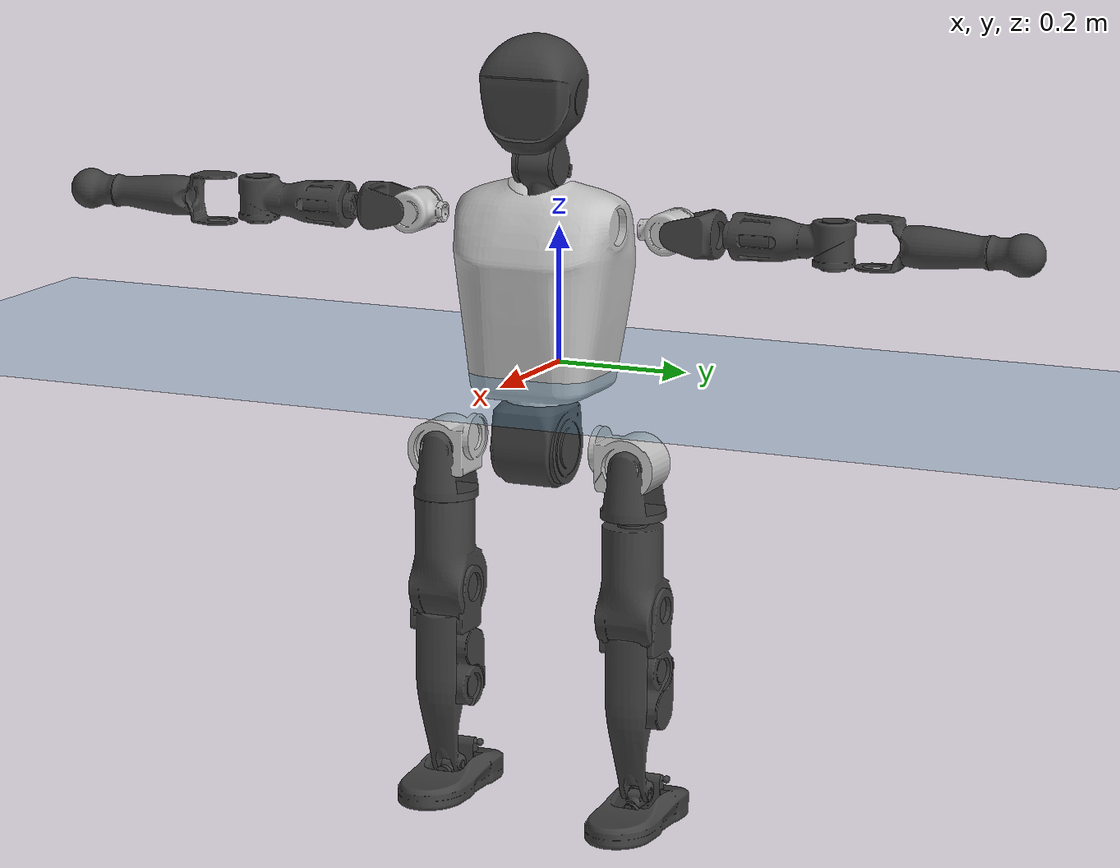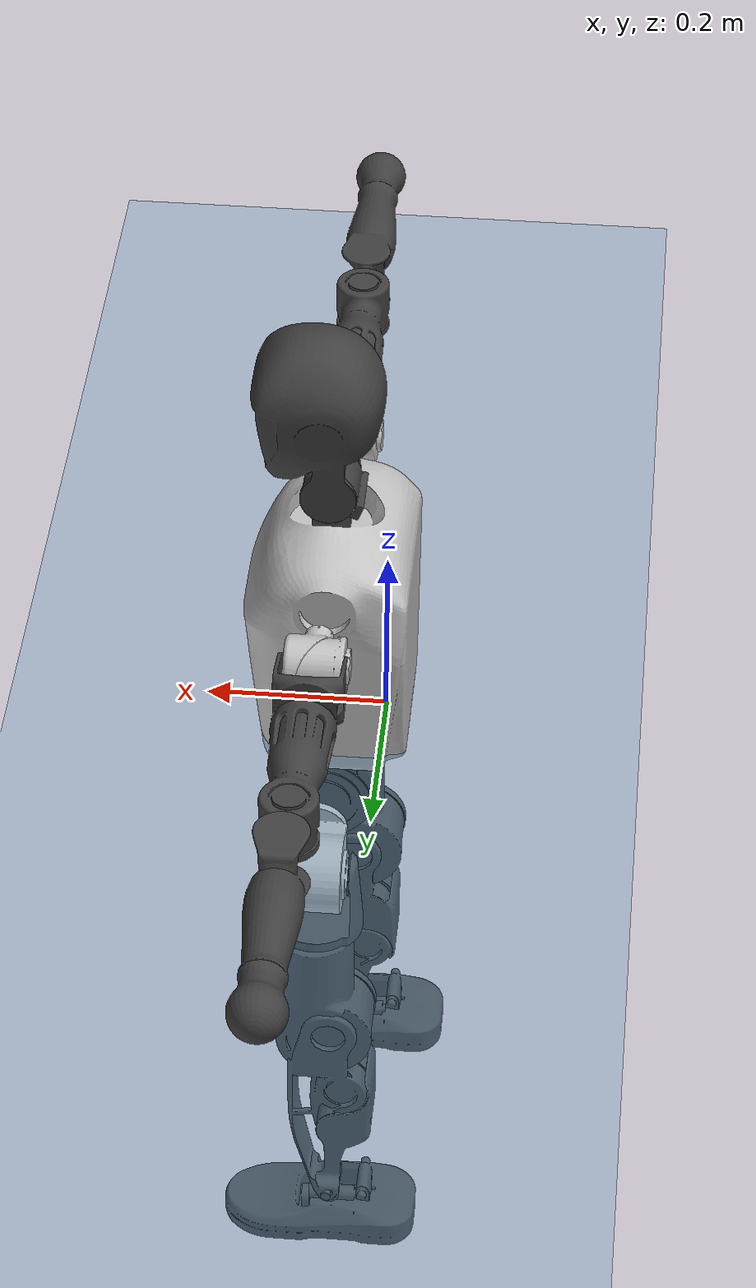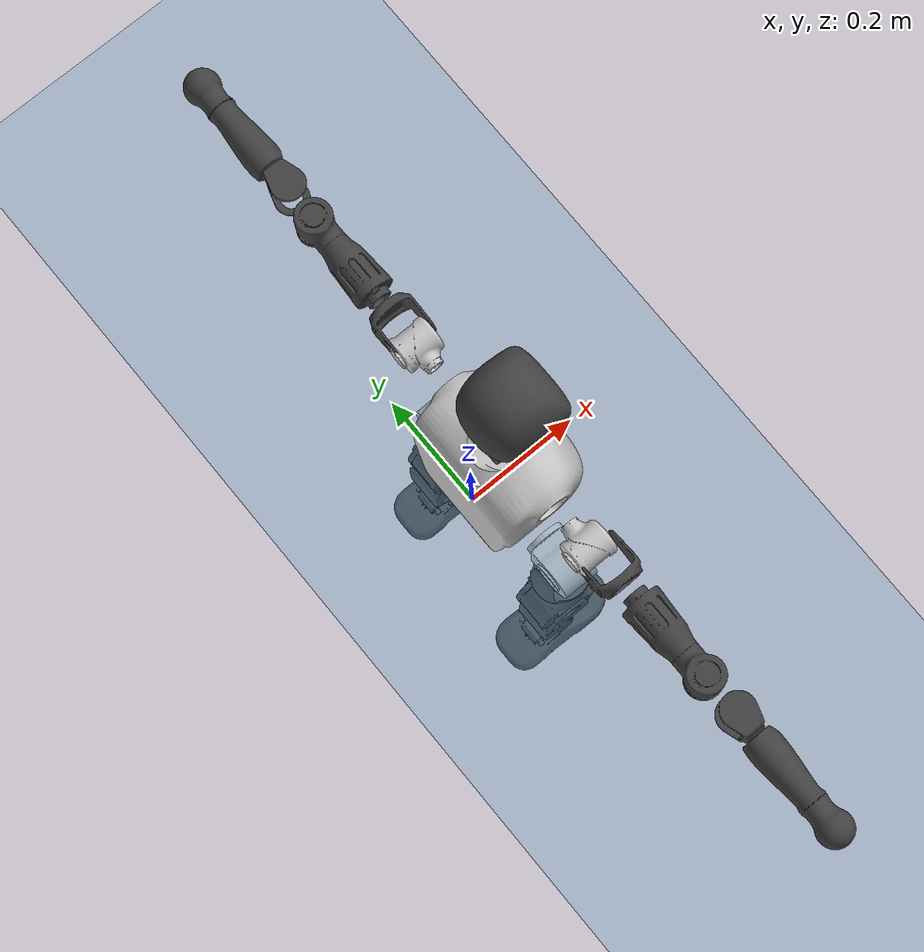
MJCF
<mujoco model="T1">
  <compiler angle="radian" assetdir="assets" balanceinertia="true" inertiafromgeom="false"/>

  <option timestep="0.005" density="1.2" viscosity="2e-05"/>

  <size nkey="1"/>

  <visual>
    <quality shadowsize="8192"/>
    <map shadowclip="0.5"/>
  </visual>

  <default>
    <default class="/">
      <joint armature="0.01" damping="0.01" frictionloss="0.1"/>
      <geom contype="0" conaffinity="0" group="1" solref="-1000 -80"/>
      <site size="0.01 0.005 0.005" group="5"/>
      <general forcelimited="true" biastype="affine" gainprm="25" biasprm="0 -25 -0.6"/>
      <default class="t1">
        <geom rgba="0.25 0.25 0.25 1"/>
        <default class="visual">
          <geom type="mesh" group="2"/>
        </default>
        <default class="collision">
          <geom group="3"/>
        </default>
        <default class="foot">
          <geom size="0.1115 0.05 0.015" type="box" condim="6" group="4" priority="1" solimp="0.015 1 0.015"/>
        </default>
        <default class="reward_collision_sphere">
          <geom group="5" rgba="1 0 0 1"/>
        </default>
      </default>
    </default>
  </default>

  <asset>
    <texture type="skybox" colorspace="auto" name="//unnamed_texture_0" builtin="gradient" rgb1="0.95 0.95 0.95" rgb2="0.95 0.95 0.95" width="100" height="600"/>
    <texture type="2d" colorspace="auto" name="texplane" builtin="checker" rgb1="0.345 0.575 0.748" rgb2="0.345 0.575 0.748" markrgb="1 1 1" width="512" height="512"/>
    <material name="MatPlane" class="/" texture="texplane" texuniform="true" texrepeat="2 2" specular="0.9"/>
    <mesh name="Trunk" class="/" file="Trunk.stl"/>
    <mesh name="H1" class="/" file="H1.stl"/>
    <mesh name="H2" class="/" file="H2.stl"/>
    <mesh name="AL1" class="/" file="AL1.stl"/>
    <mesh name="AL2" class="/" file="AL2.stl"/>
    <mesh name="AL3" class="/" file="AL3.stl"/>
    <mesh name="left_hand_link" class="/" file="left_hand_link.stl"/>
    <mesh name="AR1" class="/" file="AR1.stl"/>
    <mesh name="AR2" class="/" file="AR2.stl"/>
    <mesh name="AR3" class="/" file="AR3.stl"/>
    <mesh name="right_hand_link" class="/" file="right_hand_link.stl"/>
    <mesh name="Waist" class="/" file="Waist.stl"/>
    <mesh name="Hip_Pitch_Left" class="/" file="Hip_Pitch_Left.stl"/>
    <mesh name="Hip_Roll_Left" class="/" file="Hip_Roll_Left.stl"/>
    <mesh name="Hip_Yaw_Left" class="/" file="Hip_Yaw_Left.stl"/>
    <mesh name="Shank_Left" class="/" file="Shank_Left.stl"/>
    <mesh name="Ankle_Cross_Left" class="/" file="Ankle_Cross_Left.stl"/>
    <mesh name="left_foot_link" class="/" file="left_foot_link.stl"/>
    <mesh name="Hip_Pitch_Right" class="/" file="Hip_Pitch_Right.stl"/>
    <mesh name="Hip_Roll_Right" class="/" file="Hip_Roll_Right.stl"/>
    <mesh name="Hip_Yaw_Right" class="/" file="Hip_Yaw_Right.stl"/>
    <mesh name="Shank_Right" class="/" file="Shank_Right.stl"/>
    <mesh name="Ankle_Cross_Right" class="/" file="Ankle_Cross_Right.stl"/>
    <mesh name="right_foot_link" class="/" file="right_foot_link.stl"/>
  </asset>

  <worldbody>
    <geom name="floor" class="/" size="100 100 0.125" type="plane" group="0" material="MatPlane"/>
    <light name="toplight_shadow" class="/" pos="0 0 5" dir="0.0990148 0.0990148 -0.990148" type="directional" ambient="0.04 0.04 0.04" diffuse="0.55 0.55 0.55" specular="0.12 0.12 0.12"/>
    <light name="toplight_fill" class="/" pos="0 0 5" dir="0.0990148 0.0990148 -0.990148" type="directional" castshadow="false" ambient="0.04 0.04 0.04" diffuse="0.3 0.3 0.3" specular="0.08 0.08 0.08"/>
    <body name="trunk" childclass="t1" pos="0.000220785 -0.00168007 -0.00192239" quat="1 -9.66776e-05 8.16394e-05 5.87761e-05">
      <inertial pos="0.0550702 -0.00586486 0.1008" quat="0.99994 0.00421459 -0.0101488 -1.4425e-05" mass="17.7973" diaginertia="0.0981422 0.486168 0.0523295"/>
      <joint name="//unnamed_joint_0" type="free" armature="0" damping="0" frictionloss="0"/>
      <geom name="//unnamed_geom_1" class="visual" rgba="0.76 0.76 0.76 1" mesh="Trunk"/>
      <geom name="//unnamed_geom_2" class="collision" size="0.0864339 0.115245 0.172868" pos="0.0609263 0 0.119488" type="box"/>
      <geom name="//unnamed_geom_3" class="reward_collision_sphere" size="0.132532" pos="0.0609263 0 0.0995736"/>
      <geom name="//unnamed_geom_4" class="reward_collision_sphere" size="0.0172868" pos="0.0609263 0.122925 0"/>
      <geom name="//unnamed_geom_5" class="reward_collision_sphere" size="0.0172868" pos="0.0609263 -0.122925 0"/>
      <geom name="//unnamed_geom_6" class="reward_collision_sphere" size="0.0172868" pos="0.0609263 0.154741 0.179232"/>
      <geom name="//unnamed_geom_7" class="reward_collision_sphere" size="0.0172868" pos="0.0609263 -0.154741 0.179232"/>
      <site name="imu" pos="-4.07256e-05 -0.00405658 0.0115663" size="0.0115245"/>
      <camera name="track" pos="0 -2.89236 0" quat="0.707107 0.707107 0 0" mode="trackcom"/>
      <camera name="ego_camera" pos="0.123884 0 0.418209" quat="-0.5 -0.5 0.5 0.5"/>
      <body name="H1" pos="0.0611676 0.00310844 0.238154" quat="1 4.57624e-06 -7.47573e-06 -4.6493e-07">
        <inertial pos="-0.00135939 -0.00800211 0.0547738" quat="0.764893 -0.00411317 0.0167569 0.643926" mass="0.685819" diaginertia="0.000271973 0.00141865 0.000144026"/>
        <joint name="AAHead_yaw" pos="0 0 0" axis="-0.00594371 0.00304128 0.999978" range="-1.56285 1.65268" armature="0.0106237" damping="0.00192185" frictionloss="0.152091"/>
        <geom name="//unnamed_geom_8" class="visual" mesh="H1"/>
        <body name="H2" pos="0.00164989 -0.0018752 0.0643202" quat="1 0.000313805 -7.84631e-05 0.000474384">
          <inertial pos="0.00526487 0.00609496 0.0963805" quat="0.98819 0.0967517 -0.0679252 -0.0975022" mass="0.969794" diaginertia="0.00219554 0.0122775 0.00166782"/>
          <joint name="Head_pitch" pos="0 0 0" axis="-0.00541702 -0.999938 0.0097508" range="-1.24302 0.36512" armature="0.0120704" damping="0.00427575" frictionloss="0.119711"/>
          <geom name="//unnamed_geom_9" class="visual" mesh="H2"/>
          <geom name="//unnamed_geom_10" class="collision" size="0.0921961" pos="0.0101544 0 0.109531"/>
          <geom name="//unnamed_geom_11" class="reward_collision_sphere" size="0.103721" pos="0.0203088 0 0.0995736"/>
        </body>
      </body>
      <body name="AL1" pos="0.0597512 0.156124 0.217855" quat="0.999999 0.000147477 -0.00115491 -0.00116272">
        <inertial pos="-0.00135195 0.064012 -0.0014824" quat="0.493398 0.513275 -0.494766 0.498312" mass="0.795388" diaginertia="0.00149364 0.00766592 0.000289201"/>
        <joint name="Left_Shoulder_Pitch" pos="0 0 0" axis="0.00128604 0.999999 -0.000487115" range="-3.25358 1.15987" armature="0.0112881" damping="0" frictionloss="0.114689"/>
        <geom name="//unnamed_geom_12" class="visual" rgba="0.76 0.76 0.76 1" mesh="AL1"/>
        <body name="AL2" pos="0.00117294 0.0651565 0.00100428" quat="1 0.000253832 0.000514629 5.49389e-05">
          <inertial pos="-0.00034767 0.0492418 0.000100507" quat="0.478046 0.492409 -0.497432 0.530629" mass="0.252673" diaginertia="0.000443028 0.00222106 0.000167188"/>
          <joint name="Left_Shoulder_Roll" pos="0 0 0" axis="-0.999968 -0.000667942 -0.00802598" stiffness="0.00127081" range="-1.56635 1.74943" armature="0.0131964" damping="0.0106352" frictionloss="0.101257"/>
          <geom name="//unnamed_geom_13" class="visual" mesh="AL2"/>
          <body name="AL3" pos="0.000296543 0.0813865 0.000569346" quat="1 -0.000186373 0.000357849 2.45207e-05">
            <inertial pos="0.00472811 0.124723 0.000127509" quat="0.706964 0.707236 -0.00406982 -0.00160989" mass="1.47303" diaginertia="0.0130381 0.0805327 0.000602994"/>
            <joint name="Left_Elbow_Pitch" pos="0 0 0" axis="0.00198529 -0.999993 0.00313269" range="-2.22827 2.17977" armature="0.00989356" damping="0.00527425" frictionloss="0.114251"/>
            <geom name="//unnamed_geom_14" class="visual" mesh="AL3"/>
            <geom name="//unnamed_geom_15" class="collision" size="0.0345735 0.0864339" pos="0 0.072309 0" quat="0.707105 0.707108 0 0" type="cylinder"/>
            <geom name="//unnamed_geom_16" class="reward_collision_sphere" size="0.0414882"/>
            <body name="left_hand_link" pos="0.0010105 0.208417 0.00526802" quat="0.999999 -0.000883622 -0.000774858 -0.000321932">
              <inertial pos="0.000991245 0.156193 0.00221428" quat="0.707107 0.707024 -0.00866458 0.00644482" mass="0.516961" diaginertia="0.00912564 0.0512078 0.000204879"/>
              <joint name="Left_Elbow_Yaw" pos="0 0 0" axis="-0.006272 0.00433404 0.999971" range="-2.35402 -0.0188433" armature="0.0117412" damping="0.0379095" frictionloss="0.101796"/>
              <geom name="//unnamed_geom_17" class="visual" mesh="left_hand_link"/>
              <geom name="//unnamed_geom_18" class="collision" size="0.0345735 0.100839" pos="0 0.188003 0" quat="0.707105 0.707108 0 0" type="cylinder"/>
              <geom name="//unnamed_geom_19" class="reward_collision_sphere" size="0.0576226"/>
              <geom name="//unnamed_geom_20" class="reward_collision_sphere" size="0.0403358" pos="0 0.15908 0"/>
              <geom name="//unnamed_geom_21" class="reward_collision_sphere" size="0.0403358" pos="0 0.310929 0"/>
            </body>
          </body>
        </body>
      </body>
      <body name="AR1" pos="0.0599758 -0.152669 0.220702" quat="1 0.00015982 0.000378548 0.000326577">
        <inertial pos="-0.0004521 -0.0653527 0.00457612" quat="0.506082 0.513164 -0.496015 0.484266" mass="0.793203" diaginertia="0.00149641 0.00840931 0.000287117"/>
        <joint name="Right_Shoulder_Pitch" pos="0 0 0" axis="0.000334208 -1 -1.09646e-05" range="-1.21435 3.31389" armature="0.0125536" damping="0.0279239" frictionloss="0.144647"/>
        <geom name="//unnamed_geom_22" class="visual" rgba="0.76 0.76 0.76 1" mesh="AR1"/>
        <body name="AR2" pos="0.00491429 -0.0679474 0.00229049" quat="1 0.000356792 0.000271734 0.000254693">
          <inertial pos="0.00387417 -0.0489404 0.0029033" quat="0.494089 0.500756 -0.510764 0.494206" mass="0.255857" diaginertia="0.000441672 0.00229711 0.00017539"/>
          <joint name="Right_Shoulder_Roll" pos="0 0 0" axis="-0.999947 -0.00507445 0.00896075" range="-1.73708 1.57148" armature="0.0114187" damping="0.0364325" frictionloss="0.128508"/>
          <geom name="//unnamed_geom_23" class="visual" mesh="AR2"/>
          <body name="AR3" pos="0.00173073 -0.0859808 -0.001477" quat="1 -0.000117345 0.000113019 5.76513e-05">
            <inertial pos="0.00202801 -0.125167 -0.00225466" quat="0.707155 0.70705 0.00181355 0.00299853" mass="1.55572" diaginertia="0.0139141 0.0863488 0.000592711"/>
            <joint name="Right_Elbow_Pitch" pos="0 0 0" axis="0.00760035 0.999961 0.00444107" range="-2.3165 2.30764" armature="0.0119147" damping="0.00780192" frictionloss="0.129312"/>
            <geom name="//unnamed_geom_24" class="visual" mesh="AR3"/>
            <geom name="//unnamed_geom_25" class="collision" size="0.0345735 0.0864339" pos="0 -0.072309 0" quat="0.707105 0.707108 0 0" type="cylinder"/>
            <geom name="//unnamed_geom_26" class="reward_collision_sphere" size="0.0414882"/>
            <body name="right_hand_link" pos="0.00237698 -0.214485 -0.00564161" quat="1 -0.000117934 0.00038801 -0.000110058">
              <inertial pos="0.000726204 -0.159683 0.00212355" quat="0.69974 0.714357 -0.0076414 -0.000255448" mass="0.487966" diaginertia="0.00909302 0.0530877 0.000208593"/>
              <joint name="Right_Elbow_Yaw" pos="0 0 0" axis="-8.7029e-05 0.000274422 1" range="-0.0179501 2.43909" armature="0.0105695" damping="0.0223949" frictionloss="0.0880945"/>
              <geom name="//unnamed_geom_27" class="visual" mesh="right_hand_link"/>
              <geom name="//unnamed_geom_28" class="collision" size="0.0345735 0.100839" pos="0 -0.188003 0" quat="0.707105 0.707108 0 0" type="cylinder"/>
              <geom name="//unnamed_geom_29" class="reward_collision_sphere" size="0.0576226"/>
              <geom name="//unnamed_geom_30" class="reward_collision_sphere" size="0.0403358" pos="0 -0.15908 0"/>
              <geom name="//unnamed_geom_31" class="reward_collision_sphere" size="0.0403358" pos="0 -0.310929 0"/>
            </body>
          </body>
        </body>
      </body>
      <body name="Waist" pos="0.0650662 -0.00382496 -0.10949" quat="1 0.000388358 -0.000776529 0.000142081">
        <inertial pos="0.0089844 0.00223726 0.0100251" quat="0.983459 -0.0061349 -0.180949 -0.00532055" mass="4.0478" diaginertia="0.00621956 0.0331145 0.00475165"/>
        <joint name="Waist" pos="0 0 0" axis="0.000150812 0.0100365 0.99995" range="-1.57205 1.55804" armature="0.0108455" damping="0.0128308" frictionloss="0.114279"/>
        <geom name="//unnamed_geom_32" class="visual" mesh="Waist"/>
        <body name="Hip_Pitch_Left" pos="0.00319519 0.153122 0.00386111" quat="0.999999 0.000704203 -0.000655645 -0.0011468">
          <inertial pos="-0.000334045 -0.0130208 -0.019311" quat="0.975138 0.221111 0.0145781 0.0017155" mass="1.46076" diaginertia="0.00192181 0.00905859 0.00120767"/>
          <joint name="Left_Hip_Pitch" pos="0 0 0" axis="0.000399386 0.999993 -0.00381935" range="-1.8007 1.48057" armature="0.00859489" damping="0.0131892" frictionloss="0.125383"/>
          <geom name="//unnamed_geom_33" class="visual" rgba="0.76 0.76 0.76 1" mesh="Hip_Pitch_Left"/>
          <body name="Hip_Roll_Left" pos="-0.00439403 -0.000821569 -0.0194862" quat="0.999999 0.00073575 -0.000620137 0.00029277">
            <inertial pos="0.000589974 0.00064285 -0.0526194" quat="0.701905 0.0117245 -0.0240146 0.711769" mass="0.640344" diaginertia="0.00198734 0.00985757 0.000509762"/>
            <joint name="Left_Hip_Roll" pos="0 0 0" axis="-0.999871 -0.0156334 0.00379166" range="-1.56678 0.247457" armature="0.0091189" damping="0" frictionloss="0.115048"/>
            <geom name="//unnamed_geom_34" class="visual" mesh="Hip_Roll_Left"/>
            <geom name="//unnamed_geom_35" class="reward_collision_sphere" size="0.0633848"/>
            <body name="Hip_Yaw_Left" pos="0.00124053 -0.000474592 -0.0885479" quat="0.999999 -0.00123312 -0.000340703 -0.000223878">
              <inertial pos="-0.00403319 0.00206462 -0.0913132" quat="0.694533 -0.0442966 -0.0299414 0.717472" mass="3.21602" diaginertia="0.027114 0.16911 0.00247902"/>
              <joint name="Left_Hip_Yaw" pos="0 0 0" axis="-0.0093058 0.00251334 -0.999954" range="-1.0056 0.927993" armature="0.0114339" damping="0" frictionloss="0.119705"/>
              <geom name="//unnamed_geom_36" class="visual" mesh="Hip_Yaw_Left"/>
              <geom name="//unnamed_geom_37" class="collision" size="0.0576226 0.0921961" type="cylinder"/>
              <body name="Shank_Left" pos="-0.0197348 0.000720445 -0.126067" quat="1 -0.000176547 0.000588664 0.00032128">
                <inertial pos="-0.00835 -0.00279408 -0.127631" quat="0.997531 -0.000426959 -0.024389 0.0658517" mass="2.82824" diaginertia="0.0367293 0.210308 0.00185436"/>
                <joint name="Left_Knee_Pitch" pos="0 0 0" axis="0.0179714 0.99981 0.00752926" range="0.012025 2.31917" armature="0.0119539" damping="0.00417275" frictionloss="0.101411"/>
                <geom name="//unnamed_geom_38" class="visual" mesh="Shank_Left"/>
                <geom name="//unnamed_geom_39" class="collision" size="0.0576226 0.0864339" pos="0 0 -0.119488" type="cylinder"/>
                <geom name="//unnamed_geom_40" class="reward_collision_sphere" size="0.0749093"/>
                <body name="Ankle_Cross_Left" pos="0.00341511 0.00112203 -0.283291" quat="0.999999 0.000719593 0.000803065 -0.000540378">
                  <inertial pos="-0.0047138 -0.00170198 -0.00776752" quat="0.445191 0.543659 0.557329 0.442293" mass="0.105659" diaginertia="2.93394e-05 0.000159493 1.08458e-05"/>
                  <joint name="Left_Ankle_Pitch" pos="0 0 0" axis="0.000347764 1 0.000107266" stiffness="0.00528155" range="-0.959544 0.395033" armature="0.0112904" damping="0" frictionloss="0.127262"/>
                  <geom name="//unnamed_geom_41" class="visual" mesh="Ankle_Cross_Left"/>
                  <body name="left_foot_link" pos="-0.00188454 0.00121611 -0.0173587" quat="1 -1.61157e-05 -0.00022373 0.000288889">
                    <inertial pos="0.00176759 0.000611639 -0.00627174" quat="0.00992128 0.619948 0.00298855 0.784574" mass="1.11346" diaginertia="0.00318843 0.0157226 0.002059"/>
                    <joint name="Left_Ankle_Roll" pos="0 0 0" axis="-0.999913 0.0127581 -0.00341845" range="-0.41541 0.442285" armature="0.0111884" damping="0" frictionloss="0.117443"/>
                    <geom name="//unnamed_geom_42" class="visual" mesh="left_foot_link"/>
                    <geom name="left_foot" class="foot" size="0.121934 0.0441642 0.0186653" pos="0.0101544 0 -0.014936"/>
                    <geom name="//unnamed_geom_44" class="reward_collision_sphere" size="0.0599275" pos="0.0101544 0 -0.014936"/>
                    <geom name="//unnamed_geom_45" class="reward_collision_sphere" size="0.0345735" pos="0.0964667 -0.0332621 -0.014936"/>
                    <geom name="//unnamed_geom_46" class="reward_collision_sphere" size="0.0345735" pos="-0.0710807 -0.0332621 -0.014936"/>
                    <site name="left_foot" class="foot" pos="0.0101544 0 -0.014936" size="0.0115245"/>
                  </body>
                </body>
              </body>
            </body>
          </body>
        </body>
        <body name="Hip_Pitch_Right" pos="-0.00269693 -0.15108 0.0020526" quat="0.999998 0.00112575 0.00162434 -0.000579049">
          <inertial pos="0.00303902 0.00886231 -0.0214459" quat="0.973042 -0.229169 0.0239342 -0.00990758" mass="1.54452" diaginertia="0.00192356 0.00885079 0.00129856"/>
          <joint name="Right_Hip_Pitch" pos="0 0 0" axis="-0.00067384 -0.999939 0.0109858" stiffness="0.0071391" range="-1.57508 1.91255" armature="0.0121622" damping="0.00831875" frictionloss="0.110703"/>
          <geom name="//unnamed_geom_47" class="visual" rgba="0.76 0.76 0.76 1" mesh="Hip_Pitch_Right"/>
          <body name="Hip_Roll_Right" pos="-0.00508311 0.000591898 -0.0165638" quat="1 -0.000182605 -1.02967e-05 0.000172562">
            <inertial pos="0.000261547 0.00179178 -0.054151" quat="0.715639 -0.0144811 0.0156118 0.698146" mass="0.588223" diaginertia="0.00187455 0.00938403 0.000518924"/>
            <joint name="Right_Hip_Roll" pos="0 0 0" axis="-0.999941 -0.00333823 0.0103298" range="-0.323774 1.51581" armature="0.0111905" damping="0.00318324" frictionloss="0.117279"/>
            <geom name="//unnamed_geom_48" class="visual" mesh="Hip_Roll_Right"/>
            <geom name="//unnamed_geom_49" class="reward_collision_sphere" size="0.0633848"/>
            <body name="Hip_Yaw_Right" pos="-0.000531771 -0.00224865 -0.0787739" quat="0.999999 -0.000129298 0.000693468 -0.000951049">
              <inertial pos="-0.00765993 -0.000354856 -0.0842203" quat="0.70844 -0.0312823 -0.0297013 0.704451" mass="3.51829" diaginertia="0.0289659 0.164403 0.00261856"/>
              <joint name="Right_Hip_Yaw" pos="0 0 0" axis="-0.0252504 -0.0203979 -0.999473" range="-0.964829 1.04407" armature="0.00955012" damping="0.0369719" frictionloss="0.116182"/>
              <geom name="//unnamed_geom_50" class="visual" mesh="Hip_Yaw_Right"/>
              <geom name="//unnamed_geom_51" class="collision" size="0.0576226 0.0921961" type="cylinder"/>
              <body name="Shank_Right" pos="-0.0125287 -0.0018283 -0.136488" quat="1 4.76401e-05 1.65864e-05 8.61798e-07">
                <inertial pos="-0.00538734 -0.00166222 -0.119831" quat="0.99906 -0.00939506 -0.0276743 -0.0320108" mass="2.51202" diaginertia="0.034098 0.204162 0.00175781"/>
                <joint name="Right_Knee_Pitch" pos="0 0 0" axis="0.00955054 -0.999922 0.00805289" range="-2.42734 0.0242582" armature="0.00855618" damping="0.00730212" frictionloss="0.116031"/>
                <geom name="//unnamed_geom_52" class="visual" mesh="Shank_Right"/>
                <geom name="//unnamed_geom_53" class="collision" size="0.0576226 0.0864339" pos="0 0 -0.119488" type="cylinder"/>
                <geom name="//unnamed_geom_54" class="reward_collision_sphere" size="0.0749093"/>
                <body name="Ankle_Cross_Right" pos="0.000201206 0.00201396 -0.275598" quat="1 0.000211637 5.345e-06 3.87471e-06">
                  <inertial pos="-0.00347182 0.0007729 -0.00802408" quat="0.441745 0.55001 0.55732 0.437887" mass="0.114349" diaginertia="3.0274e-05 0.000156871 1.13044e-05"/>
                  <joint name="Right_Ankle_Pitch" pos="0 0 0" axis="-0.00156851 -0.999999 0.00057601" stiffness="0.0172699" range="-0.284751 0.939745" armature="0.0117025" damping="0.018378" frictionloss="0.101212"/>
                  <geom name="//unnamed_geom_55" class="visual" mesh="Ankle_Cross_Right"/>
                  <body name="right_foot_link" pos="-0.00438494 -0.00104193 -0.0103339" quat="1 -0.000143584 -6.49212e-05 9.96337e-05">
                    <inertial pos="0.00535242 -0.00221804 -0.00971797" quat="-0.00131021 0.623441 -0.00157751 0.781867" mass="1.04926" diaginertia="0.0029682 0.0156104 0.00220408"/>
                    <joint name="Right_Ankle_Roll" pos="0 0 0" axis="-0.999985 -0.00536062 0.000629709" range="-0.341237 0.440564" armature="0.0127102" damping="0.0283287" frictionloss="0.128513"/>
                    <geom name="//unnamed_geom_56" class="visual" mesh="right_foot_link"/>
                    <geom name="right_foot" class="foot" size="0.0927194 0.0521433 0.0161944" pos="0.0101544 0 -0.014936"/>
                    <geom name="//unnamed_geom_58" class="reward_collision_sphere" size="0.0460981"/>
                    <geom name="//unnamed_geom_59" class="reward_collision_sphere" size="0.0345735" pos="0.0101544 0 -0.014936"/>
                    <geom name="//unnamed_geom_60" class="reward_collision_sphere" size="0.0345735" pos="0.0964667 0.0332621 -0.014936"/>
                    <geom name="//unnamed_geom_61" class="reward_collision_sphere" size="0.0345735" pos="-0.0710807 0.0332621 -0.014936"/>
                    <site name="right_foot" class="foot" pos="0.0101544 0 -0.014936" size="0.0115245"/>
                  </body>
                </body>
              </body>
            </body>
          </body>
        </body>
      </body>
    </body>
  </worldbody>

  <contact>
    <pair class="/" geom1="floor" geom2="left_foot" name="//unnamed_contact_0"/>
    <pair class="/" geom1="floor" geom2="right_foot" name="//unnamed_contact_1"/>
  </contact>

  <actuator>
    <general name="AAHead_yaw" class="/" joint="AAHead_yaw" forcerange="-8.76597 8.76597" gainprm="30.0242" biasprm="0 -30.0242 -0.632371"/>
    <general name="Head_pitch" class="/" joint="Head_pitch" forcerange="-8.16855 8.16855" gainprm="30.0242" biasprm="0 -30.0242 -0.632371"/>
    <general name="Left_Shoulder_Pitch" class="/" joint="Left_Shoulder_Pitch" forcerange="-20.7043 20.7043" gainprm="30.0242" biasprm="0 -30.0242 -0.632371"/>
    <general name="Left_Shoulder_Roll" class="/" joint="Left_Shoulder_Roll" forcerange="-19.0113 19.0113" gainprm="30.0242" biasprm="0 -30.0242 -0.632371"/>
    <general name="Left_Elbow_Pitch" class="/" joint="Left_Elbow_Pitch" forcerange="-20.3485 20.3485" gainprm="30.0242" biasprm="0 -30.0242 -0.632371"/>
    <general name="Left_Elbow_Yaw" class="/" joint="Left_Elbow_Yaw" forcerange="-19.3142 19.3142" gainprm="30.0242" biasprm="0 -30.0242 -0.632371"/>
    <general name="Right_Shoulder_Pitch" class="/" joint="Right_Shoulder_Pitch" forcerange="-22.5706 22.5706" gainprm="30.0242" biasprm="0 -30.0242 -0.632371"/>
    <general name="Right_Shoulder_Roll" class="/" joint="Right_Shoulder_Roll" forcerange="-20.5756 20.5756" gainprm="30.0242" biasprm="0 -30.0242 -0.632371"/>
    <general name="Right_Elbow_Pitch" class="/" joint="Right_Elbow_Pitch" forcerange="-17.2435 17.2435" gainprm="30.0242" biasprm="0 -30.0242 -0.632371"/>
    <general name="Right_Elbow_Yaw" class="/" joint="Right_Elbow_Yaw" forcerange="-22.1374 22.1374" gainprm="30.0242" biasprm="0 -30.0242 -0.632371"/>
    <general name="Waist" class="/" joint="Waist" forcerange="-37.0754 37.0754" gainprm="30.0242" biasprm="0 -30.0242 -0.632371"/>
    <general name="Left_Hip_Pitch" class="/" joint="Left_Hip_Pitch" forcerange="-52.6517 52.6517" gainprm="30.0242" biasprm="0 -30.0242 -0.632371"/>
    <general name="Left_Hip_Roll" class="/" joint="Left_Hip_Roll" forcerange="-31.8886 31.8886" gainprm="30.0242" biasprm="0 -30.0242 -0.632371"/>
    <general name="Left_Hip_Yaw" class="/" joint="Left_Hip_Yaw" forcerange="-38.1007 38.1007" gainprm="30.0242" biasprm="0 -30.0242 -0.632371"/>
    <general name="Left_Knee_Pitch" class="/" joint="Left_Knee_Pitch" forcerange="-74.5387 74.5387" gainprm="30.0242" biasprm="0 -30.0242 -0.632371"/>
    <general name="Left_Ankle_Pitch" class="/" joint="Left_Ankle_Pitch" forcerange="-23.4974 23.4974" gainprm="30.0242" biasprm="0 -30.0242 -0.632371"/>
    <general name="Left_Ankle_Roll" class="/" joint="Left_Ankle_Roll" forcerange="-15.0111 15.0111" gainprm="30.0242" biasprm="0 -30.0242 -0.632371"/>
    <general name="Right_Hip_Pitch" class="/" joint="Right_Hip_Pitch" forcerange="-51.7995 51.7995" gainprm="30.0242" biasprm="0 -30.0242 -0.632371"/>
    <general name="Right_Hip_Roll" class="/" joint="Right_Hip_Roll" forcerange="-34.2524 34.2524" gainprm="30.0242" biasprm="0 -30.0242 -0.632371"/>
    <general name="Right_Hip_Yaw" class="/" joint="Right_Hip_Yaw" forcerange="-28.1182 28.1182" gainprm="30.0242" biasprm="0 -30.0242 -0.632371"/>
    <general name="Right_Knee_Pitch" class="/" joint="Right_Knee_Pitch" forcerange="-69.1262 69.1262" gainprm="30.0242" biasprm="0 -30.0242 -0.632371"/>
    <general name="Right_Ankle_Pitch" class="/" joint="Right_Ankle_Pitch" forcerange="-20.9504 20.9504" gainprm="30.0242" biasprm="0 -30.0242 -0.632371"/>
    <general name="Right_Ankle_Roll" class="/" joint="Right_Ankle_Roll" forcerange="-17.4363 17.4363" gainprm="30.0242" biasprm="0 -30.0242 -0.632371"/>
  </actuator>

  <sensor>
    <gyro site="imu" name="imu_angular_velocity"/>
    <velocimeter site="imu" name="imu_linear_velocity"/>
    <framelinvel objtype="site" objname="left_foot" name="left_foot_global_linear_velocity"/>
    <framelinvel objtype="site" objname="right_foot" name="right_foot_global_linear_velocity"/>
  </sensor>

  <keyframe>
    <key name="home" qpos="0 0 0.6385 1 0 0 0 0 0 0 1.4 0 -0.4 0 -1.4 0 0.4 0 -0.4 0 0 0.8 -0.4 0 0.4 0 0 -0.8 0.4 0"/>
  </keyframe>
</mujoco>
